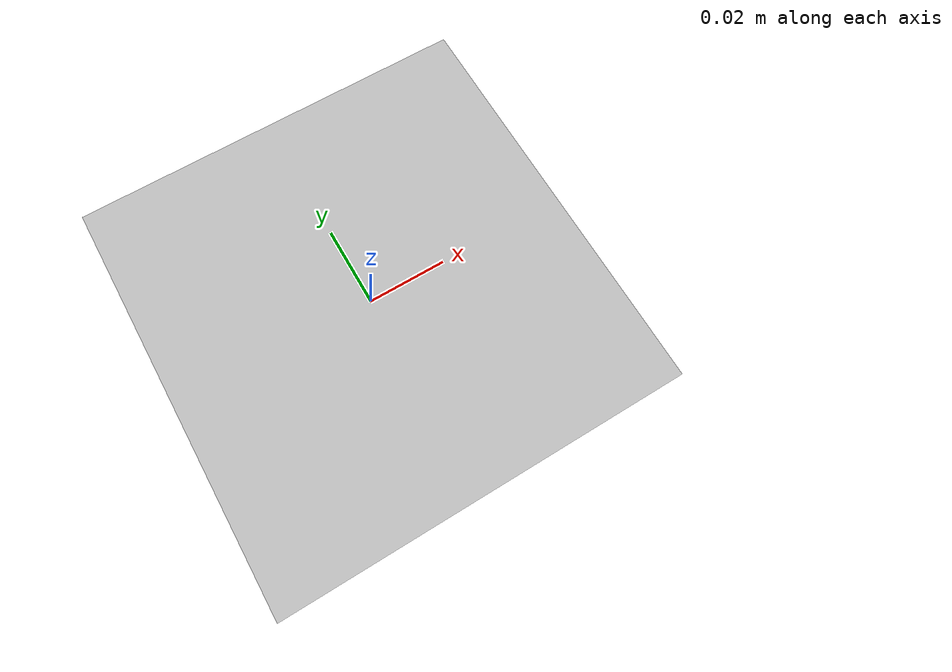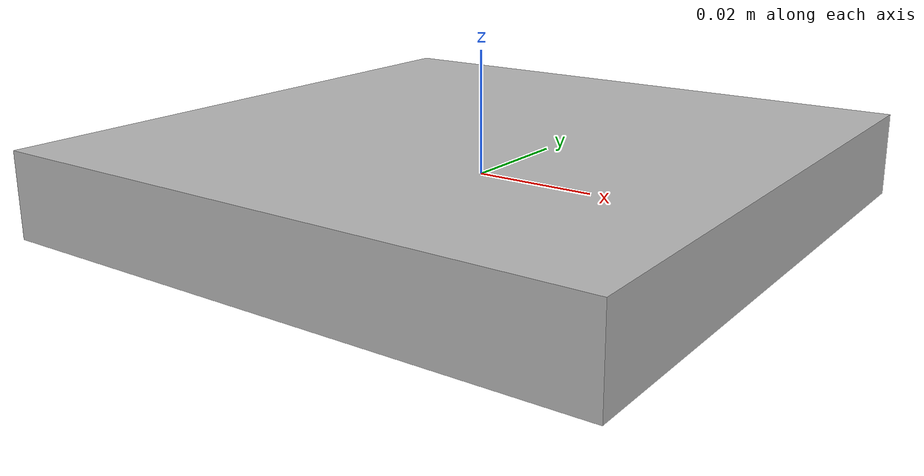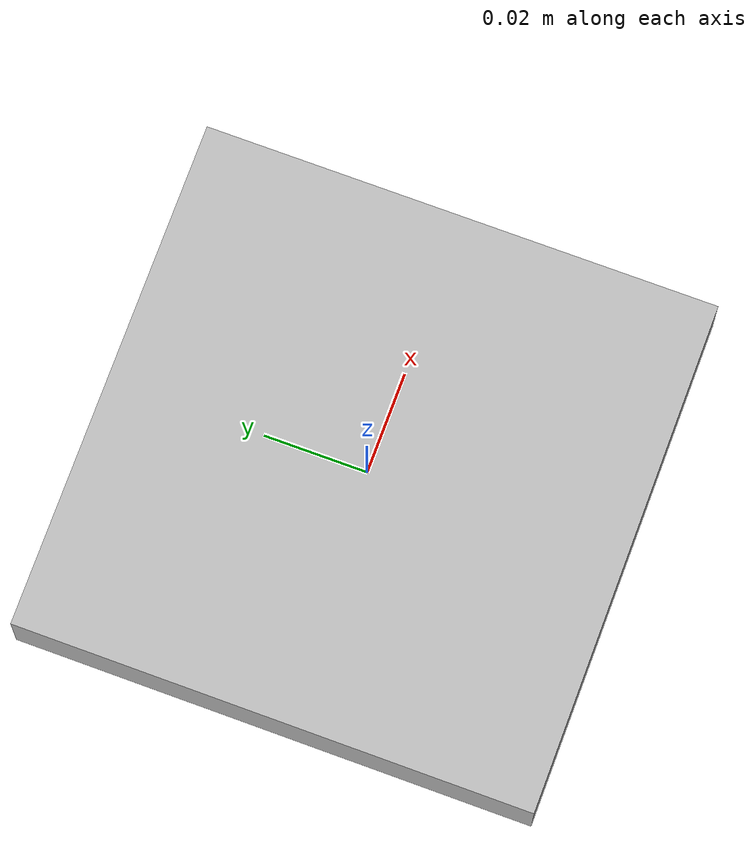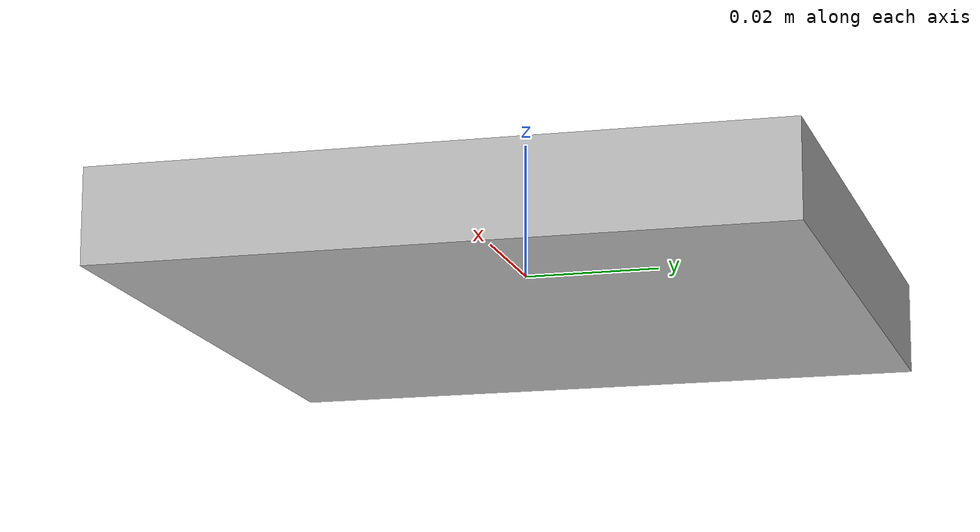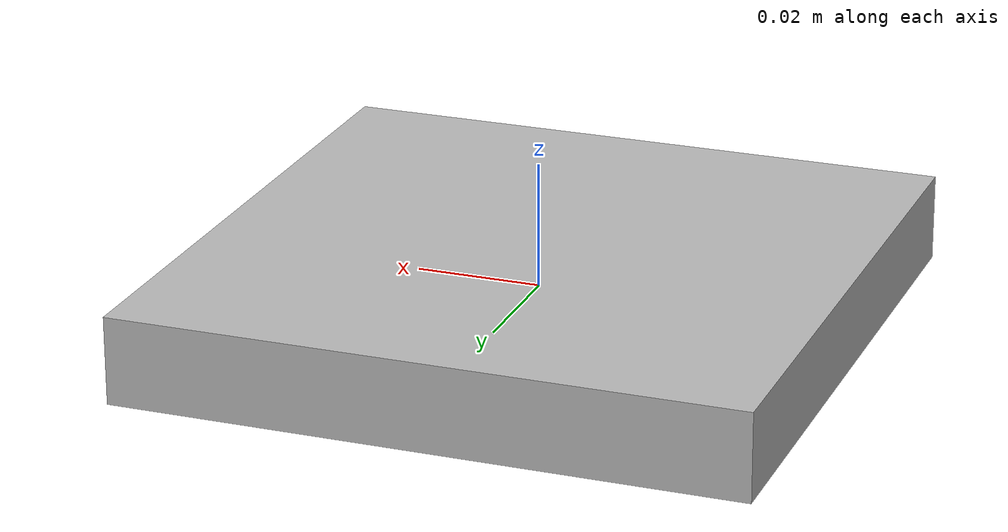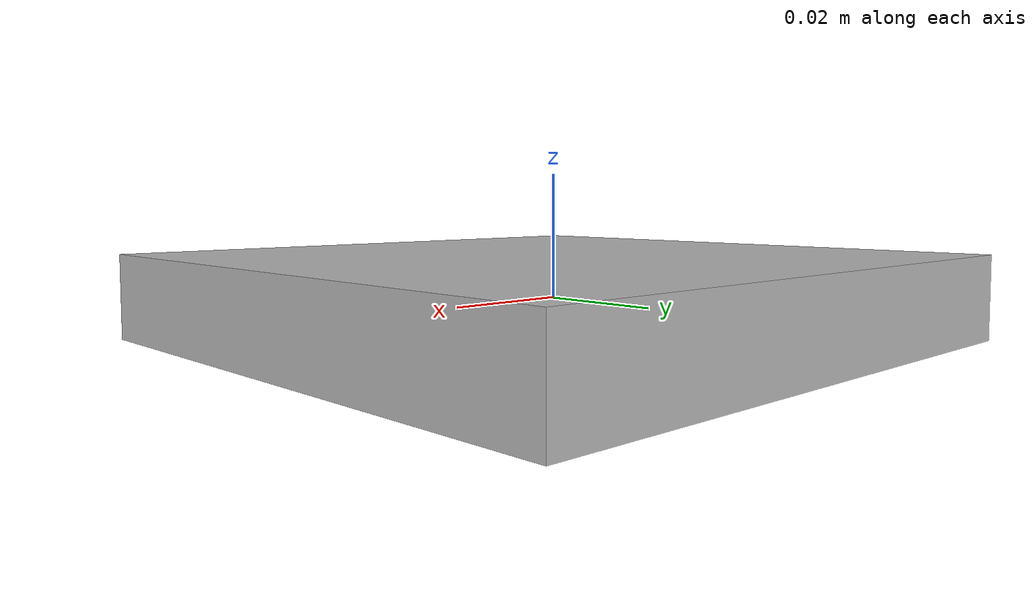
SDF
<?xml version='1.0'?>
<sdf version='1.6'>
  <model name='Ar_tags_nr11'>
    <link name='link_1'>
      <visual name='visual'>
        <pose frame=''>0 0 0 0 -0 0</pose>
        <geometry>
          <mesh>
            <uri>model://Ar_tags_nr11/meshes/Ar_tag_nr11.dae</uri>
            <scale>1 1 1</scale>
          </mesh>
        </geometry>
       	<material>
          <script>
            <uri>model://Ar_tags_nr11/materials/scripts</uri>
            <uri>model://Ar_tags_nr11/materials/textures</uri>
            <name>Ar_tags_nr11</name>
          </script>
        </material>
        <cast_shadows>1</cast_shadows>
        <transparency>0</transparency>
      </visual>
      <collision name='collision'>
        <laser_retro>0</laser_retro>
        <max_contacts>10</max_contacts>
        <pose frame=''>0 0 0 0 -0 0</pose>
        <geometry>
          <mesh>
            <uri>model://Ar_tags_nr11/meshes/Ar_tag_nr11.dae</uri>
            <scale>1 1 1</scale>
          </mesh>
        </geometry>
       </collision>
    </link>
    <static>1</static>
    <allow_auto_disable>1</allow_auto_disable>
  </model>
</sdf>
